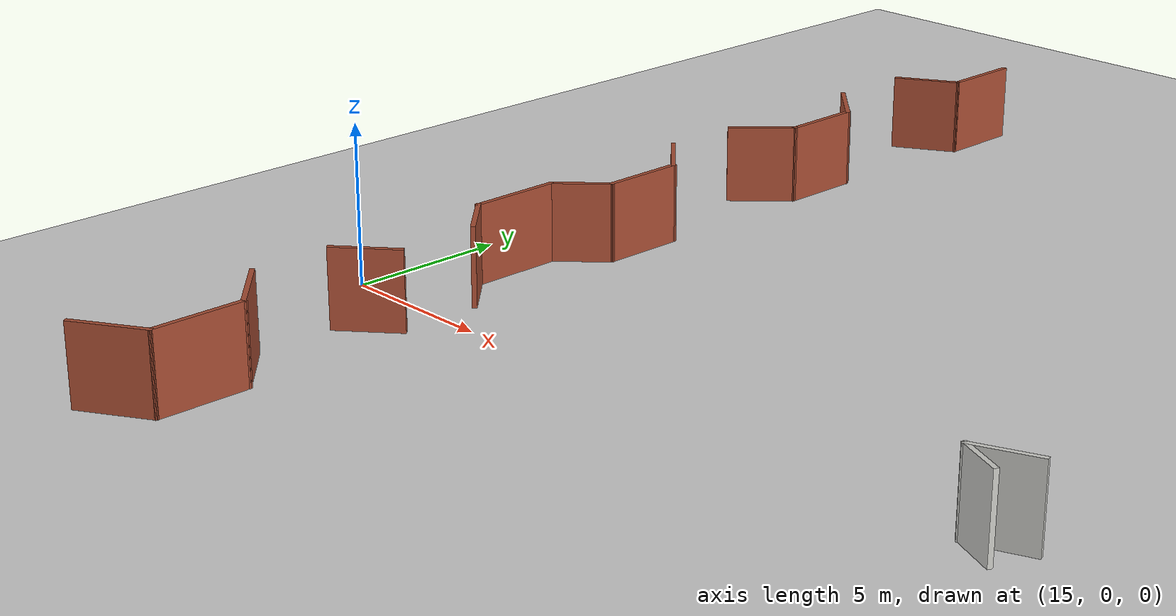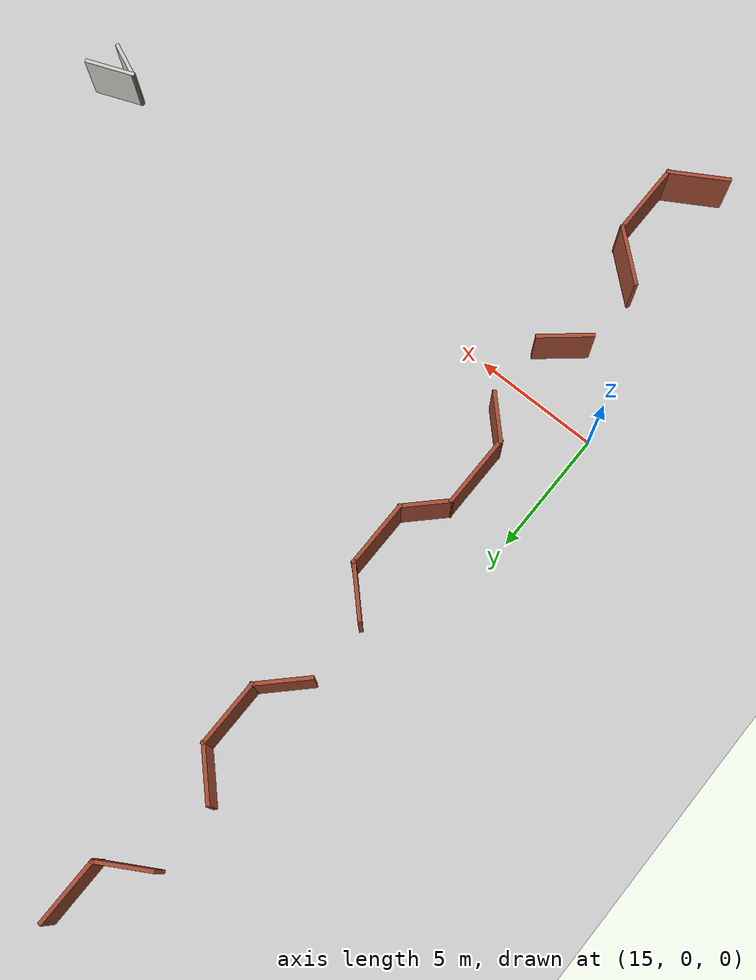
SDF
<sdf version="1.6">
 <world name="default">
  <model name="maze_rect_3">
   <pose>4e-06 -9.9e-05 0 0 -0 1.57001</pose>
   <link name="Wall_1">
    <collision name="Wall_1_Collision">
     <geometry><box><size>2.18043 0.15 2.5</size></box></geometry>
     <pose>0 0 1.25 0 -0 0</pose>
    </collision>
    <visual name="Wall_1_Visual">
     <pose>0 0 1.25 0 -0 0</pose>
     <geometry><box><size>2.18043 0.15 2.5</size></box></geometry>
     <material>
      <script><uri>file://media/materials/scripts/gazebo.material</uri><name>Gazebo/Bricks</name></script>
      <ambient>1 1 1 1</ambient>
     </material>
     <meta><layer>0</layer></meta>
    </visual>
    <pose>-2.02099 -17.9406 0 0 -0 2.27087</pose>
   </link>
   <link name="Wall_156">
    <collision name="Wall_156_Collision">
     <geometry><box><size>2.75 0.15 2.5</size></box></geometry>
     <pose>0 0 1.25 0 -0 0</pose>
    </collision>
    <visual name="Wall_156_Visual">
     <pose>0 0 1.25 0 -0 0</pose>
     <geometry><box><size>2.75 0.15 2.5</size></box></geometry>
     <material>
      <script><uri>file://media/materials/scripts/gazebo.material</uri><name>Gazebo/Bricks</name></script>
      <ambient>1 1 1 1</ambient>
     </material>
     <meta><layer>0</layer></meta>
    </visual>
    <pose>24.2277 -18.9581 0 0 -0 3.14159</pose>
   </link>
   <link name="Wall_157">
    <collision name="Wall_157_Collision">
     <geometry><box><size>2.25 0.15 2.5</size></box></geometry>
     <pose>0 0 1.25 0 -0 0</pose>
    </collision>
    <visual name="Wall_157_Visual">
     <pose>0 0 1.25 0 -0 0</pose>
     <geometry><box><size>2.25 0.15 2.5</size></box></geometry>
     <material>
      <script><uri>file://media/materials/scripts/gazebo.material</uri><name>Gazebo/Bricks</name></script>
      <ambient>1 1 1 1</ambient>
     </material>
     <meta><layer>0</layer></meta>
    </visual>
    <pose>22.4027 -18.0488 0 0 -0 2.0944</pose>
   </link>
   <link name="Wall_159">
    <collision name="Wall_159_Collision">
     <geometry><box><size>2.25 0.15 2.5</size></box></geometry>
     <pose>0 0 1.25 0 -0 0</pose>
    </collision>
    <visual name="Wall_159_Visual">
     <pose>0 0 1.25 0 -0 0</pose>
     <geometry><box><size>2.25 0.15 2.5</size></box></geometry>
     <material>
      <script><uri>file://media/materials/scripts/gazebo.material</uri><name>Gazebo/Bricks</name></script>
      <ambient>1 1 1 1</ambient>
     </material>
     <meta><layer>0</layer></meta>
    </visual>
    <pose>18.2852 -17.8819 0 0 -0 -2.35619</pose>
   </link>
   <link name="Wall_160">
    <collision name="Wall_160_Collision">
     <geometry><box><size>2.75 0.15 2.5</size></box></geometry>
     <pose>0 0 1.25 0 -0 0</pose>
    </collision>
    <visual name="Wall_160_Visual">
     <pose>0 0 1.25 0 -0 0</pose>
     <geometry><box><size>2.75 0.15 2.5</size></box></geometry>
     <material>
      <script><uri>file://media/materials/scripts/gazebo.material</uri><name>Gazebo/Bricks</name></script>
      <ambient>1 1 1 1</ambient>
     </material>
     <meta><layer>0</layer></meta>
    </visual>
    <pose>16.2427 -18.6244 0 0 -0 3.14159</pose>
   </link>
   <link name="Wall_161">
    <collision name="Wall_161_Collision">
     <geometry><box><size>2.25 0.15 2.5</size></box></geometry>
     <pose>0 0 1.25 0 -0 0</pose>
    </collision>
    <visual name="Wall_161_Visual">
     <pose>0 0 1.25 0 -0 0</pose>
     <geometry><box><size>2.25 0.15 2.5</size></box></geometry>
     <material>
      <script><uri>file://media/materials/scripts/gazebo.material</uri><name>Gazebo/Bricks</name></script>
      <ambient>1 1 1 1</ambient>
     </material>
     <meta><layer>0</layer></meta>
    </visual>
    <pose>14.2003 -17.8819 0 0 -0 2.35619</pose>
   </link>
   <link name="Wall_163">
    <collision name="Wall_163_Collision">
     <geometry><box><size>2.25 0.15 2.5</size></box></geometry>
     <pose>0 0 1.25 0 -0 0</pose>
    </collision>
    <visual name="Wall_163_Visual">
     <pose>0 0 1.25 0 -0 0</pose>
     <geometry><box><size>2.25 0.15 2.5</size></box></geometry>
     <material>
      <script><uri>file://media/materials/scripts/gazebo.material</uri><name>Gazebo/Bricks</name></script>
      <ambient>1 1 1 1</ambient>
     </material>
     <meta><layer>0</layer></meta>
    </visual>
    <pose>10.1153 -17.8819 0 0 -0 -2.35619</pose>
   </link>
   <link name="Wall_164">
    <collision name="Wall_164_Collision">
     <geometry><box><size>2.75 0.15 2.5</size></box></geometry>
     <pose>0 0 1.25 0 -0 0</pose>
    </collision>
    <visual name="Wall_164_Visual">
     <pose>0 0 1.25 0 -0 0</pose>
     <geometry><box><size>2.75 0.15 2.5</size></box></geometry>
     <material>
      <script><uri>file://media/materials/scripts/gazebo.material</uri><name>Gazebo/Bricks</name></script>
      <ambient>1 1 1 1</ambient>
     </material>
     <meta><layer>0</layer></meta>
    </visual>
    <pose>8.07288 -18.6244 0 0 -0 3.14159</pose>
   </link>
   <link name="Wall_165">
    <collision name="Wall_165_Collision">
     <geometry><box><size>2 0.15 2.5</size></box></geometry>
     <pose>0 0 1.25 0 -0 0</pose>
    </collision>
    <visual name="Wall_165_Visual">
     <pose>0 0 1.25 0 -0 0</pose>
     <geometry><box><size>2 0.15 2.5</size></box></geometry>
     <material>
      <script><uri>file://media/materials/scripts/gazebo.material</uri><name>Gazebo/Bricks</name></script>
      <ambient>1 1 1 1</ambient>
     </material>
     <meta><layer>0</layer></meta>
    </visual>
    <pose>6.11881 -17.9703 0 0 -0 2.35619</pose>
   </link>
   <link name="Wall_166">
    <collision name="Wall_166_Collision">
     <geometry><box><size>3 0.15 2.5</size></box></geometry>
     <pose>0 0 1.25 0 -0 0</pose>
    </collision>
    <visual name="Wall_166_Visual">
     <pose>0 0 1.25 0 -0 0</pose>
     <geometry><box><size>3 0.15 2.5</size></box></geometry>
     <material>
      <script><uri>file://media/materials/scripts/gazebo.material</uri><name>Gazebo/Bricks</name></script>
      <ambient>1 1 1 1</ambient>
     </material>
     <meta><layer>0</layer></meta>
    </visual>
    <pose>4.03974 -17.3162 0 0 -0 3.14159</pose>
   </link>
   <link name="Wall_167">
    <collision name="Wall_167_Collision">
     <geometry><box><size>2 0.15 2.5</size></box></geometry>
     <pose>0 0 1.25 0 -0 0</pose>
    </collision>
    <visual name="Wall_167_Visual">
     <pose>0 0 1.25 0 -0 0</pose>
     <geometry><box><size>2 0.15 2.5</size></box></geometry>
     <material>
      <script><uri>file://media/materials/scripts/gazebo.material</uri><name>Gazebo/Bricks</name></script>
      <ambient>1 1 1 1</ambient>
     </material>
     <meta><layer>0</layer></meta>
    </visual>
    <pose>1.96066 -17.9703 0 0 -0 -2.35619</pose>
   </link>
   <link name="Wall_3">
    <collision name="Wall_3_Collision">
     <geometry><box><size>2.42962 0.15 2.5</size></box></geometry>
     <pose>0 0 1.25 0 -0 0</pose>
    </collision>
    <visual name="Wall_3_Visual">
     <pose>0 0 1.25 0 -0 0</pose>
     <geometry><box><size>2.42962 0.15 2.5</size></box></geometry>
     <material>
      <script><uri>file://media/materials/scripts/gazebo.material</uri><name>Gazebo/Bricks</name></script>
      <ambient>1 1 1 1</ambient>
     </material>
     <meta><layer>0</layer></meta>
    </visual>
    <pose>-6.01752 -18.0289 0 0 -0 -2.28021</pose>
   </link>
   <link name="Wall_4">
    <collision name="Wall_4_Collision">
     <geometry><box><size>3 0.15 2.5</size></box></geometry>
     <pose>0 0 1.25 0 -0 0</pose>
    </collision>
    <visual name="Wall_4_Visual">
     <pose>0 0 1.25 0 -0 0</pose>
     <geometry><box><size>3 0.15 2.5</size></box></geometry>
     <material>
      <script><uri>file://media/materials/scripts/gazebo.material</uri><name>Gazebo/Bricks</name></script>
      <ambient>1 1 1 1</ambient>
     </material>
     <meta><layer>0</layer></meta>
    </visual>
    <pose>-8.18499 -18.8938 0 0 -0 3.14159</pose>
   </link>
   <link name="Wall_5">
    <collision name="Wall_5_Collision">
     <geometry><box><size>2.45889 0.15 2.5</size></box></geometry>
     <pose>0 0 1.25 0 -0 0</pose>
    </collision>
    <visual name="Wall_5_Visual">
     <pose>0 0 1.25 0 -0 0</pose>
     <geometry><box><size>2.45889 0.15 2.5</size></box></geometry>
     <material>
      <script><uri>file://media/materials/scripts/gazebo.material</uri><name>Gazebo/Bricks</name></script>
      <ambient>1 1 1 1</ambient>
     </material>
     <meta><layer>0</layer></meta>
    </visual>
    <pose>-10.2029 -17.9032 0 0 -0 2.11014</pose>
   </link>
   <static>1</static>
  </model>
  <model name="v_wall_1_2">
   <pose>38.1079 0.355704 0 0 0 -1.98119</pose>
   <link name="Wall_0">
    <collision name="Wall_0_Collision">
     <geometry><box><size>2 0.15 2.5</size></box></geometry>
     <pose>0 0 1.25 0 -0 0</pose>
    </collision>
    <visual name="Wall_0_Visual">
     <pose>0 0 1.25 0 -0 0</pose>
     <geometry><box><size>2 0.15 2.5</size></box></geometry>
     <material>
      <script><uri>file://media/materials/scripts/gazebo.material</uri><name>Gazebo/CeilingTiled</name></script>
      <ambient>1 1 1 1</ambient>
     </material>
     <meta><layer>0</layer></meta>
    </visual>
    <pose>0 -0.005393 0 0 -0 -0.785398</pose>
   </link>
   <link name="Wall_1">
    <collision name="Wall_1_Collision">
     <geometry><box><size>1.5 0.15 2.5</size></box></geometry>
     <pose>0 0 1.25 0 -0 0</pose>
    </collision>
    <visual name="Wall_1_Visual">
     <pose>0 0 1.25 0 -0 0</pose>
     <geometry><box><size>1.5 0.15 2.5</size></box></geometry>
     <material>
      <script><uri>file://media/materials/scripts/gazebo.material</uri><name>Gazebo/CeilingTiled</name></script>
      <ambient>1 1 1 1</ambient>
     </material>
     <meta><layer>0</layer></meta>
    </visual>
    <pose>0.654074 0.015533 0 0 -0 1.5708</pose>
   </link>
   <static>1</static>
  </model>
  <model name="ground_plane">
   <static>1</static>
   <link name="link">
    <collision name="collision">
     <geometry><plane><normal>0 0 1</normal><size>100 100</size></plane></geometry>
     <surface>
      <contact><collide_bitmask>65535</collide_bitmask></contact>
      <friction><ode><mu>100</mu><mu2>50</mu2></ode></friction>
     </surface>
    </collision>
    <visual name="visual">
     <cast_shadows>0</cast_shadows>
     <geometry><plane><normal>0 0 1</normal><size>100 100</size></plane></geometry>
     <material>
      <script><uri>file://media/materials/scripts/gazebo.material</uri><name>Gazebo/Grey</name></script>
     </material>
    </visual>
   </link>
   <pose>9.31394 52.073 0 0 -0 0</pose>
  </model>
 </world>
</sdf>
